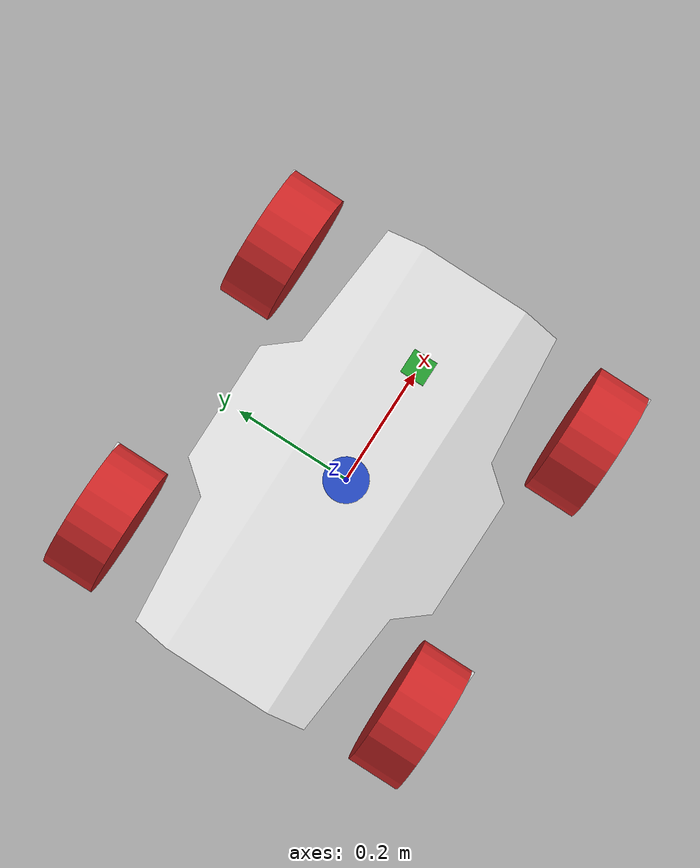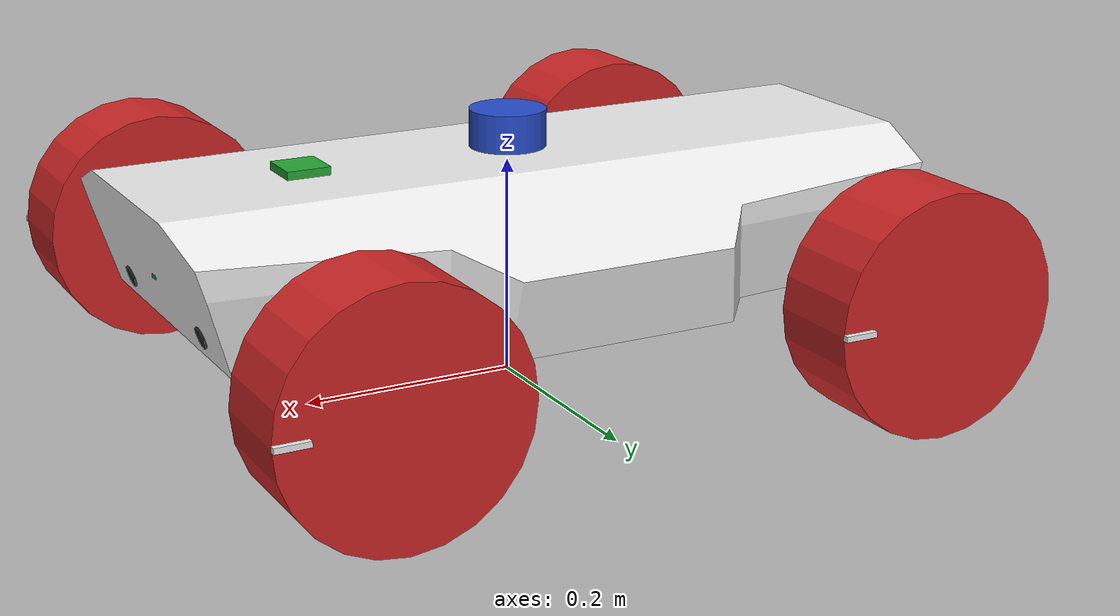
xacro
<?xml version="1.0" encoding="utf-8"?>
<robot name="streetbot4"
	xmlns:xacro="http://www.ros.org/wiki/xacro">
	<!-- Matherials -->
	<xacro:include filename="$(find streetbot4_description)/urdf/streetbot4_materials.xacro" />
    <!-- Components -->
    <xacro:include filename="$(find streetbot4_description)/urdf/jsnsr20y1.xacro" />
    <xacro:include filename="$(find streetbot4_description)/urdf/jsnsr20y1.gazebo" />
    <!-- Gazebo parameters -->
    <xacro:include filename="$(find streetbot4_description)/urdf/streetbot4.gazebo" />
    <xacro:property name="clearance" value="0.100" />
    <xacro:property name="body_height" value="0.17" />
    <xacro:property name="wheel_radius" value="0.108"/>
    <xacro:property name="wheel_separation" value="0.47"/>
    <xacro:property name="wheel_distance" value="0.249"/>
    <xacro:property name="wheel_width" value="0.086"/>
    <xacro:property name="wheel_marker_length" value="0.03"/>
    <xacro:property name="wheel_marker_width" value="0.005"/>
    <xacro:property name="mass" value="0.1"/>
    <xacro:property name="wheel_mass" value="0.2"/>
    <xacro:property name="marker_mass" value="0.0"/>
    <xacro:property name="inertia" value="0.3"/>
    <xacro:property name="PI" value="3.1415926"/>
    <xacro:property name="wheel_ixx" value="${wheel_mass*(3*wheel_radius*wheel_radius+wheel_width*wheel_width)/12}" />
    <xacro:property name="wheel_ixy" value="0.0" />
    <xacro:property name="wheel_ixz" value="0.0" />
    <xacro:property name="wheel_iyy" value="${wheel_mass*(3*wheel_radius*wheel_radius+wheel_width*wheel_width)/12}" />
    <xacro:property name="wheel_iyz" value="0.0" />
    <xacro:property name="wheel_izz" value="${wheel_mass*wheel_radius*wheel_radius/2}" />
	<!-- streetbot4_base -->
    <link name="base_link">
    </link>
	<link name="body_link">
		<visual>
			<origin xyz="0 0 -0.015" rpy="${PI/2} 0 ${PI/2}" />
            <geometry>
                <mesh filename="package://streetbot4_description/meshes/streetbot4_body.stl" scale="0.001 0.001 0.001" />
            </geometry>
			<material name="White" />
		</visual>
		<collision>
			<origin xyz="0 0 -0.015" rpy="${PI/2} 0 ${PI/2}" />
            <geometry>
                <mesh filename="package://streetbot4_description/meshes/streetbot4_body.stl" scale="0.001 0.001 0.001" />
            </geometry>
		</collision>
        <inertial>
            <origin xyz="0 0 ${clearance}" rpy="0 0 0" />
            <mass value="${mass}" />
            <inertia ixx="${inertia}" ixy="0.0" ixz="0.0" iyy="${inertia}" iyz="0.0" izz="${inertia}" />
        </inertial>
	</link>
    <joint name="base_to_body" type="fixed">
        <axis rpy="0 0 0" xyz="0 0 0"/>
        <parent link="base_link" />
        <child link="body_link" />
        <origin xyz="0 0 ${wheel_radius}" rpy="0 0 0"/>
    </joint>
    <!-- Lidar -->
    <link name="rplidar_link">
        <inertial>
            <origin xyz="0 0 0" rpy="0 0 0" />
            <mass value="0.1" />
            <inertia ixx="0.0" ixy="0.0" ixz="0.0" iyy="0.0" iyz="0.0" izz="0.0" />
        </inertial>
        <visual>
            <origin xyz="0 0 0" rpy="0 0 0" />
            <geometry>
                <cylinder radius="0.035" length="0.039"/>
            </geometry>
            <material name="Blue" />
        </visual>
        <collision>
            <origin xyz="0 0 0" rpy="0 0 0"/>
            <geometry>
                <cylinder radius="0.035" length="0.025"/>
            </geometry>
        </collision>
    </link>
    <joint name="joint_sensor_laser" type="fixed">
        <origin xyz="0 0 0.120" rpy="0 0 ${PI}"/>
        <parent link="body_link"/>
        <child link="rplidar_link"/>
    </joint>
    <!-- GPS-->
    <link name="gps_link">
        <inertial>
            <origin xyz="0 0 0" rpy="0 0 0" />
            <mass value="0.1" />
            <inertia ixx="0.0" ixy="0.0" ixz="0.0" iyy="0.0" iyz="0.0" izz="0.0" />
        </inertial>
        <visual>
            <origin xyz="0 0 0" rpy="0 0 0" />
            <geometry>
                <box size="0.040 0.040 0.015" />
            </geometry>
            <material name="Green" />
        </visual>
        <collision>
            <origin xyz="0 0 0" rpy="0 0 0"/>
            <geometry>
                <box size="0.040 0.040 0.015" />
            </geometry>
        </collision>
    </link>
    <joint name="joint_sensor_gps" type="fixed">
        <origin xyz="0.200 0 0.105" rpy="0 0 0"/>
        <parent link="body_link"/>
        <child link="gps_link"/>
    </joint>
    <!-- Camera-->
    <link name="camera_link">
        <inertial>
            <origin xyz="0 0 0" rpy="0 0 0" />
            <mass value="0.1" />
            <inertia ixx="0.0" ixy="0.0" ixz="0.0" iyy="0.0" iyz="0.0" izz="0.0" />
        </inertial>
        <visual>
            <origin xyz="0 0 0" rpy="0 0 0" />
            <geometry>
                <box size="0.010 0.010 0.010" />
            </geometry>
            <material name="Green" />
        </visual>
        <collision>
            <origin xyz="0 0 0" rpy="0 0 0"/>
            <geometry>
                <box size="0.010 0.010 0.010" />
            </geometry>
        </collision>
    </link>
    <joint name="joint_sensor_camera" type="fixed">
        <parent link="body_link"/>
        <child link="camera_link"/>
        <origin xyz="0.330 0 0.035" rpy="0 0 0"/>
    </joint>
    <!-- 4 Ultrasonic distance sensors -->
    <xacro:jsnsr20y1 parent="body_link" name="ultrasonic1">
        <origin xyz="0.325 0.090 0.005" rpy="0 0.296705973 0"/>
    </xacro:jsnsr20y1>
    <xacro:jsnsr20y1 parent="body_link" name="ultrasonic2">
        <origin xyz="0.325 -0.090 0.005" rpy="0 0.296705973 0"/>
    </xacro:jsnsr20y1>
    <xacro:jsnsr20y1 parent="body_link" name="ultrasonic3">
        <origin xyz="-0.338 0.090 0.045" rpy="0 0.296705973 ${PI}"/>
    </xacro:jsnsr20y1>
    <xacro:jsnsr20y1 parent="body_link" name="ultrasonic4">
        <origin xyz="-0.338 -0.090 0.045" rpy="0 0.296705973 ${PI}"/>
    </xacro:jsnsr20y1>
    <!-- Wheels -->
    <link name="rear_left_wheel">
        <visual>
			<origin xyz="0 0 0" rpy="${PI / 2} 0 0" />
            <geometry>
                <cylinder length="${wheel_width}" radius="${wheel_radius}"/>
            </geometry>
            <material name="Red" />
        </visual>
        <collision>
			<origin xyz="0 0 0" rpy="${PI / 2} 0 0" />
            <geometry>
                <cylinder length="${wheel_width}" radius="${wheel_radius}"/>
            </geometry>
        </collision>
        <inertial>
            <mass value="${wheel_mass}" />
            <inertia ixx="${wheel_ixx}" ixy="${wheel_ixy}" ixz="${wheel_ixz}" iyy="${wheel_iyy}" iyz="${wheel_iyz}" izz="${wheel_izz}" />
        </inertial>
    </link>
    <link name="rear_left_wheel_marker">
        <visual>
            <origin xyz="0 0 0" rpy="0 0 0" />
            <geometry>
                <box size="${wheel_marker_length} ${wheel_marker_width} ${wheel_marker_width}" />
            </geometry>
            <material name="White" />
        </visual>
        <inertial>
            <mass value="${marker_mass}" />
            <inertia ixx="0.0" ixy="0.0" ixz="0.0" iyy="0.0" iyz="0.0" izz="0.0" />
        </inertial>
    </link>
    <link name="rear_right_wheel">
        <visual>
			<origin xyz="0 0 0" rpy="${PI / 2} 0 0" />
            <geometry>
                <cylinder length="${wheel_width}" radius="${wheel_radius}"/>
            </geometry>
            <material name="Red" />
        </visual>
        <collision>
			<origin xyz="0 0 0" rpy="${PI / 2} 0 0" />
            <geometry>
                <cylinder length="${wheel_width}" radius="${wheel_radius}"/>
            </geometry>
        </collision>
        <inertial>
            <mass value="${wheel_mass}" />
            <inertia ixx="${wheel_ixx}" ixy="${wheel_ixy}" ixz="${wheel_ixz}" iyy="${wheel_iyy}" iyz="${wheel_iyz}" izz="${wheel_izz}" />
        </inertial>
    </link>
    <link name="rear_right_wheel_marker">
        <visual>
            <origin xyz="0 0 0" rpy="0 0 0" />
            <geometry>
                <box size="${wheel_marker_length} ${wheel_marker_width} ${wheel_marker_width}" />
            </geometry>
            <material name="White" />
        </visual>
        <inertial>
            <mass value="${marker_mass}" />
            <inertia ixx="0.0" ixy="0.0" ixz="0.0" iyy="0.0" iyz="0.0" izz="0.0" />
        </inertial>
    </link>
    <link name="front_left_wheel">
        <visual>
			<origin xyz="0 0 0" rpy="${PI / 2} 0 0" />
            <geometry>
                <cylinder length="${wheel_width}" radius="${wheel_radius}"/>
            </geometry>
            <material name="Red" />
        </visual>
        <collision>
			<origin xyz="0 0 0" rpy="${PI / 2} 0 0" />
            <geometry>
                <cylinder length="${wheel_width}" radius="${wheel_radius}"/>
            </geometry>
        </collision>
        <inertial>
            <mass value="${wheel_mass}" />
            <inertia ixx="${wheel_ixx}" ixy="${wheel_ixy}" ixz="${wheel_ixz}" iyy="${wheel_iyy}" iyz="${wheel_iyz}" izz="${wheel_izz}" />
        </inertial>
    </link>
    <link name="front_left_wheel_marker">
        <visual>
            <origin xyz="0 0 0" rpy="0 0 0" />
            <geometry>
                <box size="${wheel_marker_length} ${wheel_marker_width} ${wheel_marker_width}" />
            </geometry>
            <material name="White" />
        </visual>
        <inertial>
            <mass value="${marker_mass}" />
            <inertia ixx="0.0" ixy="0.0" ixz="0.0" iyy="0.0" iyz="0.0" izz="0.0" />
        </inertial>
    </link>
    <link name="front_right_wheel">
        <visual>
			<origin xyz="0 0 0" rpy="${PI / 2} 0 0" />
            <geometry>
                <cylinder length="${wheel_width}" radius="${wheel_radius}"/>
            </geometry>
            <material name="Red" />
        </visual>
        <collision>
			<origin xyz="0 0 0" rpy="${PI / 2} 0 0" />
            <geometry>
                <cylinder length="${wheel_width}" radius="${wheel_radius}"/>
            </geometry>
        </collision>
        <inertial>
            <mass value="${wheel_mass}" />
            <inertia ixx="${wheel_ixx}" ixy="${wheel_ixy}" ixz="${wheel_ixz}" iyy="${wheel_iyy}" iyz="${wheel_iyz}" izz="${wheel_izz}" />
        </inertial>
    </link>
    <link name="front_right_wheel_marker">
        <visual>
            <origin xyz="0 0 0" rpy="0 0 0" />
            <geometry>
                <box size="${wheel_marker_length} ${wheel_marker_width} ${wheel_marker_width}" />
            </geometry>
            <material name="White" />
        </visual>
        <inertial>
            <mass value="${marker_mass}" />
            <inertia ixx="0.0" ixy="0.0" ixz="0.0" iyy="0.0" iyz="0.0" izz="0.0" />
        </inertial>
    </link>
    <joint name="base_to_rear_left_wheel" type="continuous">
        <axis rpy="0 0 0" xyz="0 1 0"/>
        <parent link="body_link" />
        <child link="rear_left_wheel" />
        <origin xyz="-${wheel_distance} ${wheel_separation/2 + wheel_width/2} 0" rpy="0 0 0"/>
        <dynamics damping="0.0" friction="0.0"/>
        <limit effort= "100" velocity="100"/>
    </joint>
    <joint name="base_to_rear_right_wheel" type="continuous">
        <axis rpy="0 0 0" xyz="0 1 0"/>
        <parent link="body_link" />
        <child link="rear_right_wheel" />
		<origin xyz="-${wheel_distance} ${-1 * (wheel_separation/2 + wheel_width/2)} 0" rpy="0 0 0"/>
        <dynamics damping="0.0" friction="0.0"/>
        <limit effort= "100" velocity="100"/>
    </joint>
    <joint name="base_to_front_left_wheel" type="continuous">
        <axis rpy="0 0 0" xyz="0 1 0"/>
        <parent link="body_link" />
        <child link="front_left_wheel" />
		<origin xyz="${wheel_distance} ${wheel_separation/2 + wheel_width/2} 0" rpy="0 0 0" />
        <dynamics damping="0.0" friction="0.0"/>
        <limit effort= "100" velocity="100"/>
    </joint>
    <joint name="base_to_front_right_wheel" type="continuous">
        <axis rpy="0 0 0" xyz="0 1 0"/>
        <parent link="body_link" />
        <child link="front_right_wheel" />
		<origin xyz="${wheel_distance} ${-1 * (wheel_separation/2 + wheel_width/2)} 0" rpy="0 0 0" />
        <dynamics damping="0.0" friction="0.0"/>
        <limit effort= "100" velocity="100"/>
    </joint>
    <joint name="rear_left_wheel_to_marker" type="fixed">
        <parent link="rear_left_wheel" />
        <child link="rear_left_wheel_marker" />
        <origin xyz="${wheel_radius - wheel_marker_length / 2} ${wheel_width / 2 + wheel_marker_width / 2} 0" rpy="0 0 0" />
    </joint>
    <joint name="rear_right_wheel_to_marker" type="fixed">
        <parent link="rear_right_wheel" />
        <child link="rear_right_wheel_marker" />
        <origin xyz="${wheel_radius - wheel_marker_length / 2} -${wheel_width / 2 + wheel_marker_width / 2} 0" rpy="0 0 0" />
    </joint>
    <joint name="front_left_wheel_to_marker" type="fixed">
        <parent link="front_left_wheel" />
        <child link="front_left_wheel_marker" />
        <origin xyz="${wheel_radius - wheel_marker_length / 2} ${wheel_width / 2 + wheel_marker_width / 2} 0" rpy="0 0 0" />
    </joint>
    <joint name="front_right_wheel_to_marker" type="fixed">
        <parent link="front_right_wheel" />
        <child link="front_right_wheel_marker" />
        <origin xyz="${wheel_radius - wheel_marker_length / 2} -${wheel_width / 2 + wheel_marker_width / 2} 0" rpy="0 0 0" />
    </joint>
</robot>

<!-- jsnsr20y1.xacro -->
<robot xmlns:xacro="http://ros.org/wiki/xacro">
    <xacro:macro name="jsnsr20y1" params="name parent *origin">
        <joint name="joint_sensor_${name}" type="fixed">
            <xacro:insert_block name="origin" />
            <parent link="${parent}"/>
            <child link="${name}_link"/>
        </joint>
        <link name="${name}_link">
            <inertial>
                <origin xyz="0 0 0" rpy="0 0 0" />
                <mass value="0.1" />
                <inertia ixx="0.0" ixy="0.0" ixz="0.0" iyy="0.0" iyz="0.0" izz="0.0" />
            </inertial>
            <visual>
                <origin xyz="0 0 0" rpy="0 ${PI / 2} 0" />
                <geometry>
                    <cylinder radius="0.010" length="0.005"/>
                </geometry>
                <material name="Black" />
            </visual>
            <collision>
                <origin xyz="-0.09 0 0" rpy="0 ${PI / 2} 0"/>
                <geometry>
                    <cylinder radius="0.006" length="0.005"/>
                </geometry>
            </collision>
        </link>
    </xacro:macro>
</robot>
